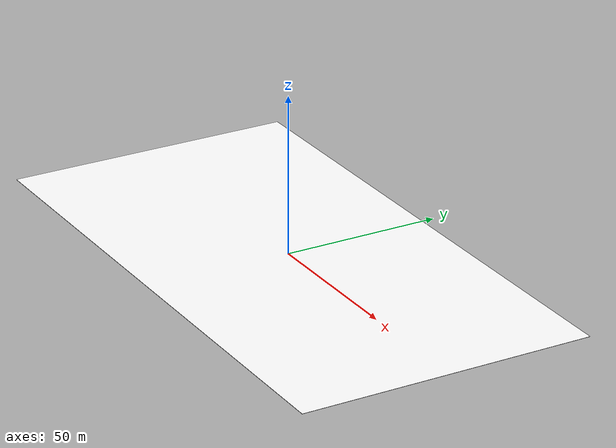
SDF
<?xml version="1.0" ?>
<sdf version="1.10">
  <world name="default">
    <gravity>0 0 -9.8</gravity>

    <scene>
      <!-- Hide the reference grid overlay in the viewport -->
      <grid>false</grid>

      <!-- Enable shadow casting (works with directional lights below) -->
      <shadows>true</shadows>

      <!-- Scene-wide ambient fill light (RGBA, range 0-1).
           Default is ~0.4; increase toward 1.0 for brighter fill,
           decrease for a more dramatic, shadowed look. -->
      <ambient>0.9 0.9 0.9 1</ambient>

      <!-- Viewport background color, used as a fallback if the
           procedural sky below is not supported by the renderer. -->
      <background>0.4 0.6 0.9 1</background>

      <sky/>
    </scene>

    <light type="directional" name="sun">
      <cast_shadows>true</cast_shadows>
      <pose>0 0 10 0 0 0</pose>
      <diffuse>0.9 0.9 0.9 1</diffuse>
      <specular>0.3 0.3 0.3 1</specular>
      <direction>-0.4 0.2 -1</direction>
    </light>

    <model name="ground_plane">
      <static>true</static>
      <link name="link">
        <collision name="collision">
          <pose>0 0 -0.05 0 0 0</pose>
          <geometry>
            <box>
              <size>176.91 92.52 0.1</size>
            </box>
          </geometry>
        </collision>
        <visual name="visual">
          <pose>0 0 -0.05 0 0 0</pose>
          <geometry>
            <box>
              <size>176.91 92.52 0.1</size>
            </box>
          </geometry>
          <material>
            <!-- ambient/diffuse set to white so the PNG texture
                 is displayed without any color tinting. -->
            <ambient>1.0 1.0 1.0 1</ambient>
            <diffuse>1.0 1.0 1.0 1</diffuse>
            <!-- PBR albedo map: the gz-sim (Ogre2) way to apply a PNG
                 texture.  The old Ogre1 .material script format is NOT
                 XML and will cause a parse error if used here. -->
            <pbr>
              <metal>
                <albedo_map>file://running_track_8192x4096.png</albedo_map>
              </metal>
            </pbr>
          </material>
        </visual>
      </link>
    </model>
  </world>
</sdf>
